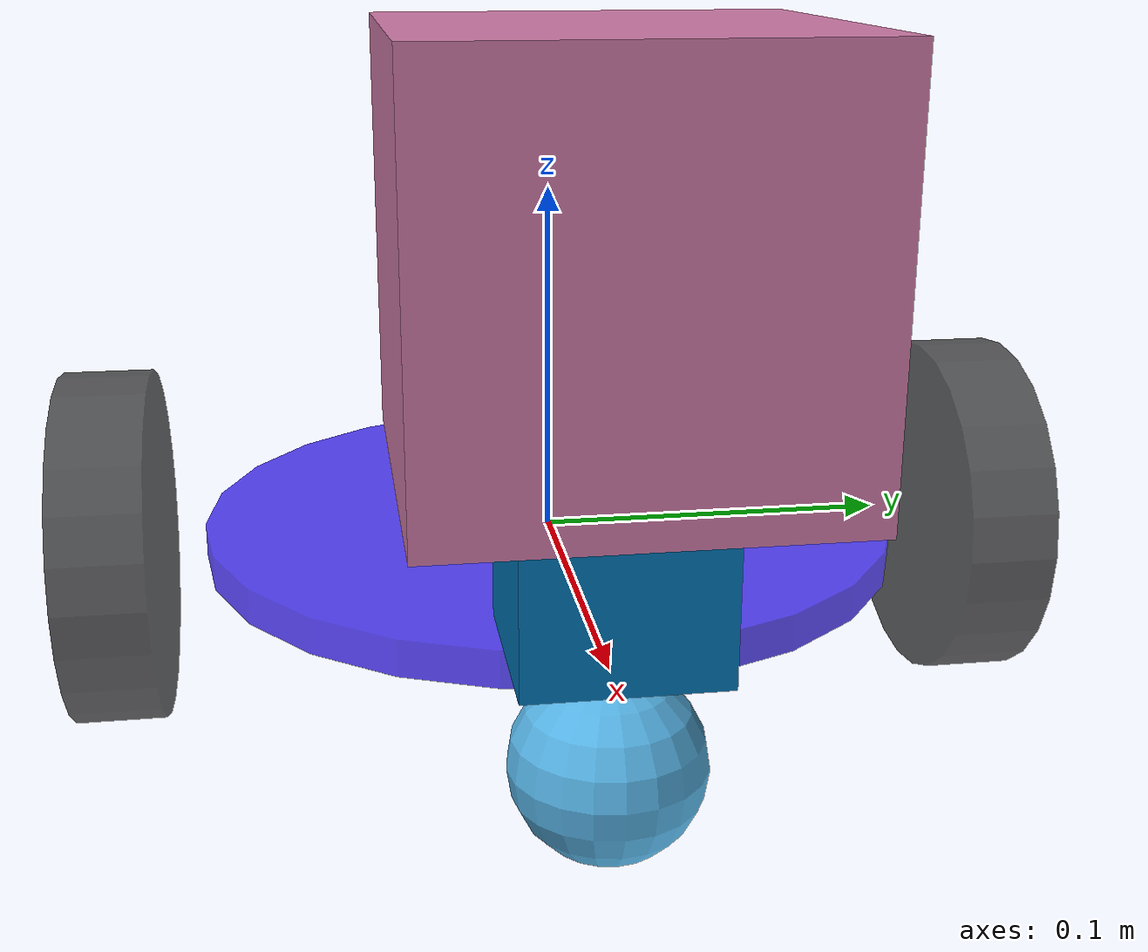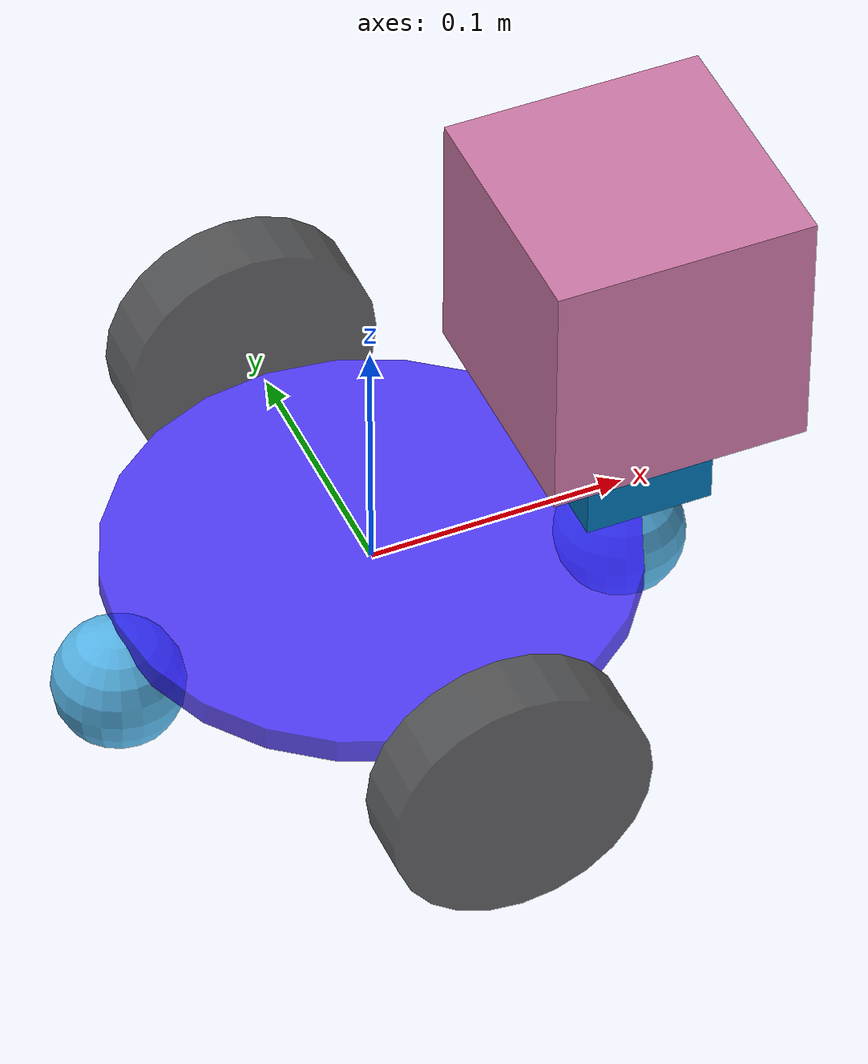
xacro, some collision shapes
<?xml version='1.0'?>

<robot name="udacity_bot" xmlns:xacro="http://www.ros.org/wiki/xacro">
  <xacro:include filename="$(find slam_project)/urdf/udacity_bot.gazebo" />

  <link name="robot_footprint"></link>

  <joint name="robot_footprint_joint" type="fixed">
    <origin xyz="0 0 0" rpy="0 0 0" />
    <parent link="robot_footprint"/>
    <child link="chassis" />
  </joint>

  <link name='chassis'>
    <pose>0 0 0.1 0 0 0</pose>

    <inertial>
      <mass value="10.0"/> <!-- CUSTOM ROBOT -->
      <origin xyz="0.0 0 0" rpy=" 0 0 0"/>
      <inertia
          ixx="0.1" ixy="0" ixz="0"
          iyy="0.1" iyz="0"
          izz="0.1"
      />
    </inertial>

    <collision name='chassis_collision'>
      <origin xyz="0 0 0" rpy=" 0 0 0"/>
      <geometry>
        <cylinder radius='0.1' length='0.01'/> <!-- CUSTOM ROBOT -->
      </geometry>
    </collision>

    <visual name='chassis_visual'>
      <origin xyz="0 0 0" rpy=" 0 0 0"/>
      <geometry>
        <cylinder radius='0.1' length='0.01'/>  <!-- CUSTOM ROBOT -->
      </geometry>
      <material name="green">
         <color rgba="0.2 0.1 1 0.8"/>  <!-- CUSTOM ROBOT -->
      </material>
    </visual>

    <collision name='back_caster_collision'>
      <origin xyz="-0.10 0 -0.025" rpy=" 0 0 0"/>
      <geometry>
        <sphere radius="0.0249"/> <!-- CUSTOM ROBOT -->
      </geometry>
    </collision>

    <visual name='back_caster_visual'>
      <origin xyz="-0.10 0 -0.025" rpy=" 0 0 0"/>
      <geometry>
        <sphere radius="0.025"/> <!-- CUSTOM ROBOT -->
      </geometry>
    </visual>

    <collision name='front_caster_collision'>
      <origin xyz="0.10 0 -0.025" rpy=" 0 0 0"/>
      <geometry>
        <sphere radius="0.0249"/> <!-- CUSTOM ROBOT -->
      </geometry>
    </collision>

    <visual name='front_caster_visual'>
      <origin xyz="0.10 0 -0.025" rpy=" 0 0 0"/>
      <geometry>
        <sphere radius="0.025"/> <!-- CUSTOM ROBOT -->
      </geometry>
    </visual>

  </link>

  <link name='left_wheel'>

    <inertial>
      <mass value="1.0"/> <!-- CUSTOM ROBOT -->
      <origin xyz="0.0 0 0" rpy=" 0 1.5707 1.5707"/>
      <inertia
          ixx="0.1" ixy="0" ixz="0"
          iyy="0.1" iyz="0"
          izz="0.1"
      />
    </inertial>

    <collision name='left_wheel_collision'>
      <origin xyz="0.0 0 0" rpy=" 0 1.5707 1.5707"/>
      <geometry>
        <cylinder radius='0.05' length='0.025'/> <!-- CUSTOM ROBOT -->
      </geometry>
    </collision>

    <visual name='left_wheel_visual'>
      <origin xyz="0.0 0 0" rpy=" 0 1.5707 1.5707"/>
      <geometry>
        <cylinder radius='0.05' length='0.025'/> <!-- CUSTOM ROBOT -->
      </geometry>
      <material name="gray">
         <color rgba="0.2 0.2 0.2 0.8"/>
      </material>
    </visual>

  </link>

  <link name='right_wheel'>

    <inertial>
      <mass value="1.0"/> <!-- CUSTOM ROBOT -->
      <origin xyz="0.0 0 0" rpy=" 0 1.5707 1.5707"/>
      <inertia
          ixx="0.1" ixy="0" ixz="0"
          iyy="0.1" iyz="0"
          izz="0.1"
      />
    </inertial>

    <collision name='right_weel_collision'>
      <origin xyz="0.0 0 0" rpy=" 0 1.5707 1.5707"/>
      <geometry>
        <cylinder radius='0.05' length='0.025'/> <!-- CUSTOM ROBOT -->
      </geometry>
    </collision>

    <visual name='right_wheel_visual'>
      <origin xyz="0.0 0 0" rpy=" 0 1.5707 1.5707"/>
      <geometry>
        <cylinder radius='0.05' length='0.025'/> <!-- CUSTOM ROBOT -->
      </geometry>
      <material name="gray">
         <color rgba="0.2 0.2 0.2 0.8"/>
      </material>
    </visual>

  </link>

  <link name='camera_link'>

    <inertial>
      <mass value="0.1"/>
      <origin xyz="0.0 0 0" rpy=" 0 0 0"/>
      <inertia
          ixx="1e-6" ixy="0" ixz="0"
          iyy="1e-6" iyz="0"
          izz="1e-6"
      />
    </inertial>

    <collision name='camera_collision'>
      <origin xyz="0.0 0 0" rpy=" 0 0 0"/>
      <geometry>
        <box size="0.05 0.05 0.05"/>
      </geometry>
    </collision>

    <visual name='camera_visual'>
      <origin xyz="0.0 0 0" rpy=" 0 0 0"/>
      <geometry>
        <box size="0.05 0.05 0.05"/>
      </geometry>
    </visual>

  </link>

<link name="camera_rgbd_frame">

    <inertial>
      <mass value="0.1"/>
      <origin xyz="0 0 0" rpy=" 0 0 0"/>
      <inertia
          ixx="1e-6" ixy="0" ixz="0"
          iyy="1e-6" iyz="0"
          izz="1e-6"
      />
    </inertial>

    <collision name="camera_rgbd_frame_collision">
      <origin xyz="0 0 0" rpy="0 0 0"/>
       <geometry>
        <box size="0.05 0.05 0.05"/>
      </geometry>
    </collision>

     <visual name="camera_rgbd_frame_visual">
      <origin xyz="0 0 0" rpy="0 0 0"/>
       <geometry>
        <box size="0.05 0.05 0.05"/>
      </geometry>
    </visual>

</link>

  <link name='hokuyo'>

    <inertial>
      <mass value="0.1"/>
      <origin xyz="0.0 0 0" rpy=" 0 0 0"/>
      <inertia
          ixx="1e-6" ixy="0" ixz="0"
          iyy="1e-6" iyz="0"
          izz="1e-6"
      />
    </inertial>

    <collision name='hokuyo_collision'>
      <origin xyz="0.0 0 0" rpy=" 0 0 0"/>
      <geometry>
        <box size="0.1 0.1 0.1"/>
      </geometry>
    </collision>

    <visual name='hokuyo_visual'>
      <origin xyz="0.0 0 0" rpy=" 0 0 0"/>
      <geometry>
        <mesh filename="package://slam_project/meshes/hokuyo.dae"/>
      </geometry>
    </visual>

  </link>

  <joint type="continuous" name="left_wheel_hinge">
    <origin xyz="0 0.125 0" rpy="0 0 0"/><!-- CUSTOM ROBOT -->
    <child link="left_wheel"/>
    <parent link="chassis"/>
    <axis xyz="0 1 0" rpy="0 0 0"/>
    <limit effort="10000" velocity="1000"/>
    <joint_properties damping="1.0" friction="1.0"/>
  </joint>

  <joint type="continuous" name="right_wheel_hinge">
    <origin xyz="0 -0.125 0" rpy="0 0 0"/><!-- CUSTOM ROBOT -->
    <child link="right_wheel"/>
    <parent link="chassis"/>
    <axis xyz="0 1 0" rpy="0 0 0"/>
    <limit effort="10000" velocity="1000"/>
    <joint_properties damping="1.0" friction="1.0"/>
  </joint>

  <joint type="fixed" name="camera_joint">
    <origin xyz="0.1 0 0.03" rpy="0 0 0"/><!-- CUSTOM ROBOT -->
    <child link="camera_link"/>
    <parent link="chassis"/>
    <axis xyz="0 1 0" rpy="0 0 0"/>
    <limit effort="10000" velocity="1000"/>
    <joint_properties damping="1.0" friction="1.0"/>
  </joint>

  <joint type="fixed" name="hokuyo_joint">
    <origin xyz="0.1 0 0.1" rpy="0 0 0"/><!-- CUSTOM ROBOT -->
    <child link="hokuyo"/>
    <parent link="chassis"/>
    <axis xyz="0 1 0" rpy="0 0 0"/>
    <limit effort="10000" velocity="1000"/>
    <joint_properties damping="1.0" friction="1.0"/>
  </joint>
 <joint name="rgbd_joint" type="fixed">
    <origin xyz="0.1 0 0.1" rpy="-1.5707 0  -1.5707" />
    <parent link="chassis"/>
    <child link="camera_rgbd_frame"/>
  </joint>

</robot>
